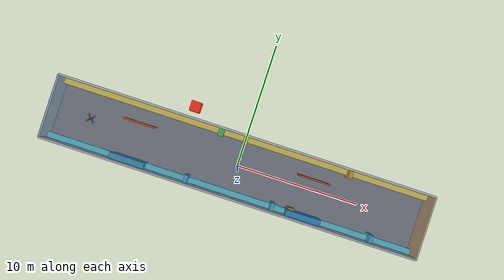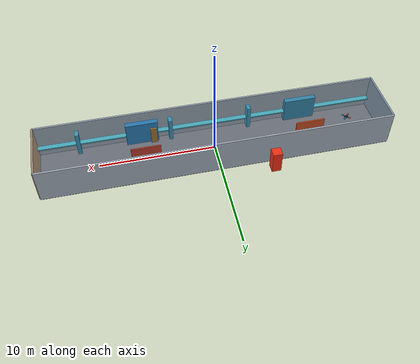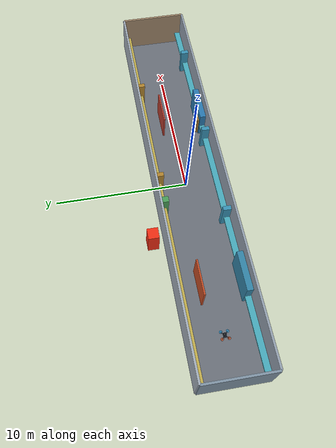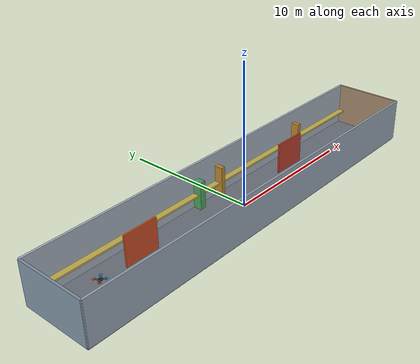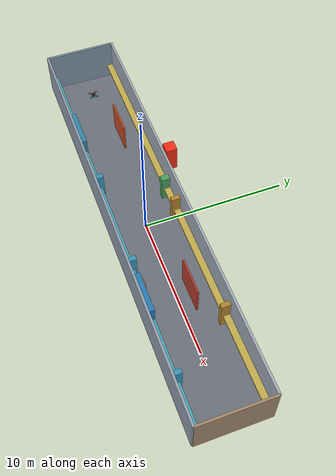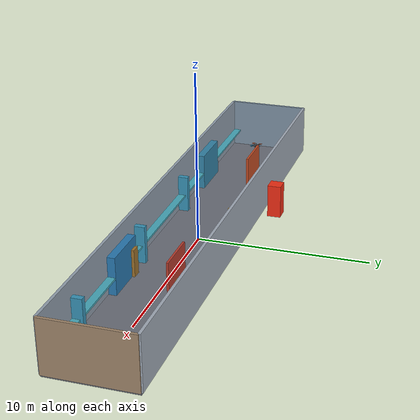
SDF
<?xml version="1.0"?>
<sdf version="1.10">
  <world name="xq_p12_dynamic_obstacle">
    <gravity>0 0 -9.80665</gravity>
    <physics name="xq_p12_400hz_physics" type="ode">
      <max_step_size>0.0025</max_step_size>
      <real_time_factor>1.0</real_time_factor>
      <real_time_update_rate>400</real_time_update_rate>
    </physics>
    <plugin filename="gz-sim-physics-system" name="gz::sim::systems::Physics"/>
    <plugin filename="gz-sim-user-commands-system" name="gz::sim::systems::UserCommands"/>
    <plugin filename="gz-sim-scene-broadcaster-system" name="gz::sim::systems::SceneBroadcaster"/>
    <plugin filename="gz-sim-sensors-system" name="gz::sim::systems::Sensors"><render_engine>ogre2</render_engine></plugin>
    <plugin filename="gz-sim-imu-system" name="gz::sim::systems::Imu"/>
    <scene><ambient>0.70 0.72 0.76</ambient><background>0.16 0.18 0.22</background></scene>
    <light name="xq_p12_sun" type="directional"><pose>0 0 8 0 0 0</pose><diffuse>0.9 0.9 0.86 1</diffuse><direction>-0.3 0.2 -1</direction></light>

    <!-- Dedicated P12 world: roof removed, every corridor wall retained. -->
    <model name="xq_p12_corridor_shell">
      <static>true</static>
      <link name="shell_link">
        <collision name="floor_c"><pose>0 0 -0.06 0 0 0</pose><geometry><box><size>30 5 0.12</size></box></geometry></collision>
        <visual name="floor_v"><pose>0 0 -0.06 0 0 0</pose><geometry><box><size>30 5 0.12</size></box></geometry><material><diffuse>0.42 0.44 0.48 1</diffuse></material></visual>
        <collision name="wall_n_c"><pose>0 2.5 1.55 0 0 0</pose><geometry><box><size>30 0.16 3.10</size></box></geometry></collision>
        <visual name="wall_n_v"><pose>0 2.5 1.55 0 0 0</pose><geometry><box><size>30 0.16 3.10</size></box></geometry><material><diffuse>0.64 0.68 0.73 1</diffuse></material></visual>
        <collision name="wall_s_c"><pose>0 -2.5 1.55 0 0 0</pose><geometry><box><size>30 0.16 3.10</size></box></geometry></collision>
        <visual name="wall_s_v"><pose>0 -2.5 1.55 0 0 0</pose><geometry><box><size>30 0.16 3.10</size></box></geometry><material><diffuse>0.58 0.63 0.69 1</diffuse></material></visual>
        <collision name="end_w_c"><pose>-15 0 1.55 0 0 0</pose><geometry><box><size>0.16 5 3.10</size></box></geometry></collision>
        <visual name="end_w_v"><pose>-15 0 1.55 0 0 0</pose><geometry><box><size>0.16 5 3.10</size></box></geometry><material><diffuse>0.50 0.58 0.65 1</diffuse></material></visual>
        <collision name="end_e_c"><pose>15 0 1.55 0 0 0</pose><geometry><box><size>0.16 5 3.10</size></box></geometry></collision>
        <visual name="end_e_v"><pose>15 0 1.55 0 0 0</pose><geometry><box><size>0.16 5 3.10</size></box></geometry><material><diffuse>0.63 0.53 0.42 1</diffuse></material></visual>

        <!-- P11 observability geometry is carried forward unchanged. -->
        <collision name="integrity_panel_c"><pose>-8.25 0.86 1.20 0 0 0</pose><geometry><box><size>2.50 0.12 2.20</size></box></geometry></collision>
        <visual name="integrity_panel_v"><pose>-8.25 0.86 1.20 0 0 0</pose><geometry><box><size>2.50 0.12 2.20</size></box></geometry><material><diffuse>0.78 0.30 0.14 1</diffuse></material></visual>
        <collision name="south_fins_c"><pose>-8.25 -2.18 1.10 0 0 0</pose><geometry><box><size>2.80 0.45 2.20</size></box></geometry></collision>
        <visual name="south_fins_v"><pose>-8.25 -2.18 1.10 0 0 0</pose><geometry><box><size>2.80 0.45 2.20</size></box></geometry><material><diffuse>0.20 0.52 0.66 1</diffuse></material></visual>
        <collision name="pier_01_c"><pose>-2.0 2.12 1.0 0 0 0</pose><geometry><box><size>0.45 0.60 2.0</size></box></geometry></collision>
        <visual name="pier_01_v"><pose>-2.0 2.12 1.0 0 0 0</pose><geometry><box><size>0.45 0.60 2.0</size></box></geometry><material><diffuse>0.29 0.62 0.35 1</diffuse></material></visual>
        <collision name="pier_02_c"><pose>5.0 -2.12 0.8 0 0 0</pose><geometry><box><size>0.55 0.65 1.6</size></box></geometry></collision>
        <visual name="pier_02_v"><pose>5.0 -2.12 0.8 0 0 0</pose><geometry><box><size>0.55 0.65 1.6</size></box></geometry><material><diffuse>0.62 0.45 0.18 1</diffuse></material></visual>
        <collision name="integrity_panel_02_c"><pose>6.0 0.86 1.20 0 0 0</pose><geometry><box><size>2.50 0.12 2.20</size></box></geometry></collision>
        <visual name="integrity_panel_02_v"><pose>6.0 0.86 1.20 0 0 0</pose><geometry><box><size>2.50 0.12 2.20</size></box></geometry><material><diffuse>0.72 0.24 0.18 1</diffuse></material></visual>
        <collision name="south_fins_02_c"><pose>6.0 -2.18 1.10 0 0 0</pose><geometry><box><size>2.80 0.45 2.20</size></box></geometry></collision>
        <visual name="south_fins_02_v"><pose>6.0 -2.18 1.10 0 0 0</pose><geometry><box><size>2.80 0.45 2.20</size></box></geometry><material><diffuse>0.16 0.48 0.70 1</diffuse></material></visual>
        <collision name="south_rib_01_c"><pose>-3.5 -2.12 1.10 0 0 0</pose><geometry><box><size>0.32 0.60 2.20</size></box></geometry></collision>
        <visual name="south_rib_01_v"><pose>-3.5 -2.12 1.10 0 0 0</pose><geometry><box><size>0.32 0.60 2.20</size></box></geometry><material><diffuse>0.22 0.58 0.72 1</diffuse></material></visual>
        <collision name="north_rib_02_c"><pose>0.0 2.12 1.10 0 0 0</pose><geometry><box><size>0.32 0.60 2.20</size></box></geometry></collision>
        <visual name="north_rib_02_v"><pose>0.0 2.12 1.10 0 0 0</pose><geometry><box><size>0.32 0.60 2.20</size></box></geometry><material><diffuse>0.70 0.52 0.18 1</diffuse></material></visual>
        <collision name="south_rib_03_c"><pose>3.5 -2.12 1.10 0 0 0</pose><geometry><box><size>0.32 0.60 2.20</size></box></geometry></collision>
        <visual name="south_rib_03_v"><pose>3.5 -2.12 1.10 0 0 0</pose><geometry><box><size>0.32 0.60 2.20</size></box></geometry><material><diffuse>0.22 0.58 0.72 1</diffuse></material></visual>
        <collision name="north_rib_04_c"><pose>8.5 2.12 1.10 0 0 0</pose><geometry><box><size>0.32 0.60 2.20</size></box></geometry></collision>
        <visual name="north_rib_04_v"><pose>8.5 2.12 1.10 0 0 0</pose><geometry><box><size>0.32 0.60 2.20</size></box></geometry><material><diffuse>0.70 0.52 0.18 1</diffuse></material></visual>
        <collision name="south_rib_05_c"><pose>11.5 -2.12 1.10 0 0 0</pose><geometry><box><size>0.32 0.60 2.20</size></box></geometry></collision>
        <visual name="south_rib_05_v"><pose>11.5 -2.12 1.10 0 0 0</pose><geometry><box><size>0.32 0.60 2.20</size></box></geometry><material><diffuse>0.22 0.58 0.72 1</diffuse></material></visual>
        <collision name="north_observation_ledge_c"><pose>0 2.20 0.99 0 0 0</pose><geometry><box><size>30 0.45 0.12</size></box></geometry></collision>
        <visual name="north_observation_ledge_v"><pose>0 2.20 0.99 0 0 0</pose><geometry><box><size>30 0.45 0.12</size></box></geometry><material><diffuse>0.76 0.68 0.30 1</diffuse></material></visual>
        <collision name="south_observation_ledge_c"><pose>0 -2.20 0.99 0 0 0</pose><geometry><box><size>30 0.45 0.12</size></box></geometry></collision>
        <visual name="south_observation_ledge_v"><pose>0 -2.20 0.99 0 0 0</pose><geometry><box><size>30 0.45 0.12</size></box></geometry><material><diffuse>0.28 0.67 0.74 1</diffuse></material></visual>
      </link>
    </model>

    <model name="xq_p12_moving_obstacle">
      <static>false</static>
      <pose>-4.5 3.4 1.0 0 0 0</pose>
      <link name="body">
        <gravity>false</gravity>
        <inertial><mass>20</mass><inertia><ixx>8</ixx><iyy>8</iyy><izz>4</izz></inertia></inertial>
        <collision name="body_c"><geometry><box><size>0.8 0.8 2.0</size></box></geometry></collision>
        <visual name="body_v"><geometry><box><size>0.8 0.8 2.0</size></box></geometry><material><diffuse>0.95 0.18 0.08 1</diffuse><emissive>0.18 0.02 0.01 1</emissive></material></visual>
      </link>
      <plugin filename="libxq_p12_obstacle_motion_system.so" name="xq_gz_bridge::P12ObstacleMotionSystem">
        <x_m>-4.5</x_m>
        <park_y_m>3.4</park_y_m>
        <blocked_y_m>0.0</blocked_y_m>
        <z_m>1.0</z_m>
        <enter_start_s>18.0</enter_start_s>
        <enter_end_s>22.0</enter_end_s>
        <leave_start_s>36.0</leave_start_s>
        <leave_end_s>40.0</leave_end_s>
      </plugin>
    </model>
    <include><name>xq_agent_01</name><uri>model://xq_iris_mid360</uri><pose>-12 0 1.2 0 0 0</pose></include>
  </world>
</sdf>

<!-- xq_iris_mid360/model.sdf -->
<sdf version="1.10">
  <model name="xq_iris_mid360" canonical_link="xq_base_link">
    <static>false</static>
    <self_collide>false</self_collide>
    <allow_auto_disable>false</allow_auto_disable>

    <link name="xq_base_link">
      <gravity>false</gravity>
      <inertial>
        <mass>1.40</mass>
        <inertia>
          <ixx>0.030</ixx>
          <ixy>0.0</ixy>
          <ixz>0.0</ixz>
          <iyy>0.030</iyy>
          <iyz>0.0</iyz>
          <izz>0.055</izz>
        </inertia>
      </inertial>

      <collision name="xq_body_collision">
        <geometry>
          <box>
            <size>0.30 0.22 0.10</size>
          </box>
        </geometry>
      </collision>
      <visual name="xq_body_visual">
        <geometry>
          <box>
            <size>0.30 0.22 0.10</size>
          </box>
        </geometry>
        <material>
          <ambient>0.035 0.045 0.060 1</ambient>
          <diffuse>0.055 0.075 0.100 1</diffuse>
          <specular>0.35 0.35 0.35 1</specular>
        </material>
      </visual>

      <collision name="xq_arm_ne_sw_collision">
        <pose>0 0 0.015 0 0 0.78539816339</pose>
        <geometry>
          <box>
            <size>0.66 0.035 0.028</size>
          </box>
        </geometry>
      </collision>
      <visual name="xq_arm_ne_sw_visual">
        <pose>0 0 0.015 0 0 0.78539816339</pose>
        <geometry>
          <box>
            <size>0.66 0.035 0.028</size>
          </box>
        </geometry>
        <material>
          <ambient>0.12 0.13 0.15 1</ambient>
          <diffuse>0.18 0.20 0.23 1</diffuse>
        </material>
      </visual>

      <collision name="xq_arm_nw_se_collision">
        <pose>0 0 0.015 0 0 -0.78539816339</pose>
        <geometry>
          <box>
            <size>0.66 0.035 0.028</size>
          </box>
        </geometry>
      </collision>
      <visual name="xq_arm_nw_se_visual">
        <pose>0 0 0.015 0 0 -0.78539816339</pose>
        <geometry>
          <box>
            <size>0.66 0.035 0.028</size>
          </box>
        </geometry>
        <material>
          <ambient>0.12 0.13 0.15 1</ambient>
          <diffuse>0.18 0.20 0.23 1</diffuse>
        </material>
      </visual>

      <visual name="xq_rotor_front_left_visual">
        <pose>0.235 0.235 0.045 0 0 0</pose>
        <geometry>
          <cylinder>
            <radius>0.105</radius>
            <length>0.008</length>
          </cylinder>
        </geometry>
        <transparency>0.35</transparency>
        <material>
          <ambient>0.08 0.55 0.78 1</ambient>
          <diffuse>0.08 0.55 0.78 1</diffuse>
        </material>
      </visual>
      <visual name="xq_rotor_front_right_visual">
        <pose>0.235 -0.235 0.045 0 0 0</pose>
        <geometry>
          <cylinder>
            <radius>0.105</radius>
            <length>0.008</length>
          </cylinder>
        </geometry>
        <transparency>0.35</transparency>
        <material>
          <ambient>0.08 0.55 0.78 1</ambient>
          <diffuse>0.08 0.55 0.78 1</diffuse>
        </material>
      </visual>
      <visual name="xq_rotor_rear_left_visual">
        <pose>-0.235 0.235 0.045 0 0 0</pose>
        <geometry>
          <cylinder>
            <radius>0.105</radius>
            <length>0.008</length>
          </cylinder>
        </geometry>
        <transparency>0.35</transparency>
        <material>
          <ambient>0.78 0.29 0.10 1</ambient>
          <diffuse>0.78 0.29 0.10 1</diffuse>
        </material>
      </visual>
      <visual name="xq_rotor_rear_right_visual">
        <pose>-0.235 -0.235 0.045 0 0 0</pose>
        <geometry>
          <cylinder>
            <radius>0.105</radius>
            <length>0.008</length>
          </cylinder>
        </geometry>
        <transparency>0.35</transparency>
        <material>
          <ambient>0.78 0.29 0.10 1</ambient>
          <diffuse>0.78 0.29 0.10 1</diffuse>
        </material>
      </visual>
    </link>

    <link name="xq_mid360_link">
      <pose relative_to="xq_base_link">0.04 0 0.135 0 0 0</pose>
      <gravity>false</gravity>
      <inertial>
        <mass>0.265</mass>
        <inertia>
          <ixx>0.00045</ixx>
          <ixy>0.0</ixy>
          <ixz>0.0</ixz>
          <iyy>0.00045</iyy>
          <iyz>0.0</iyz>
          <izz>0.00055</izz>
        </inertia>
      </inertial>
      <collision name="xq_mid360_collision">
        <geometry>
          <cylinder>
            <radius>0.040</radius>
            <length>0.065</length>
          </cylinder>
        </geometry>
      </collision>
      <visual name="xq_mid360_visual">
        <geometry>
          <cylinder>
            <radius>0.040</radius>
            <length>0.065</length>
          </cylinder>
        </geometry>
        <material>
          <ambient>0.02 0.02 0.025 1</ambient>
          <diffuse>0.035 0.035 0.045 1</diffuse>
          <specular>0.55 0.55 0.55 1</specular>
        </material>
      </visual>

      <!-- MID-360-like aggregate raster: 720 x 32 x 10 Hz ~= 230 kpoints/s. -->
      <sensor name="xq_mid360_lidar" type="gpu_lidar">
        <!-- Gazebo publishes LaserScan here and PointCloudPacked on /points. -->
        <topic>/xq/lidar</topic>
        <always_on>true</always_on>
        <update_rate>10</update_rate>
        <visualize>false</visualize>
        <lidar>
          <scan>
            <horizontal>
              <samples>720</samples>
              <resolution>1</resolution>
              <min_angle>-3.14159265359</min_angle>
              <max_angle>3.14159265359</max_angle>
            </horizontal>
            <vertical>
              <samples>32</samples>
              <resolution>1</resolution>
              <min_angle>-0.12217304764</min_angle>
              <max_angle>0.90757121104</max_angle>
            </vertical>
          </scan>
          <range>
            <min>0.10</min>
            <max>40.0</max>
            <resolution>0.02</resolution>
          </range>
          <noise>
            <type>gaussian</type>
            <mean>0.0</mean>
            <stddev>0.015</stddev>
          </noise>
        </lidar>
      </sensor>
    </link>

    <joint name="xq_mid360_joint" type="fixed">
      <parent>xq_base_link</parent>
      <child>xq_mid360_link</child>
    </joint>

    <link name="xq_imu_link">
      <pose relative_to="xq_base_link">0 0 0.015 0 0 0</pose>
      <gravity>false</gravity>
      <inertial>
        <mass>0.020</mass>
        <inertia>
          <ixx>0.00001</ixx>
          <ixy>0.0</ixy>
          <ixz>0.0</ixz>
          <iyy>0.00001</iyy>
          <iyz>0.0</iyz>
          <izz>0.00001</izz>
        </inertia>
      </inertial>
      <sensor name="xq_imu_sensor" type="imu">
        <topic>/xq/imu</topic>
        <always_on>true</always_on>
        <update_rate>200</update_rate>
        <imu>
          <angular_velocity>
            <x><noise type="gaussian"><mean>0</mean><stddev>0.00020</stddev></noise></x>
            <y><noise type="gaussian"><mean>0</mean><stddev>0.00020</stddev></noise></y>
            <z><noise type="gaussian"><mean>0</mean><stddev>0.00020</stddev></noise></z>
          </angular_velocity>
          <linear_acceleration>
            <x><noise type="gaussian"><mean>0</mean><stddev>0.0020</stddev></noise></x>
            <y><noise type="gaussian"><mean>0</mean><stddev>0.0020</stddev></noise></y>
            <z><noise type="gaussian"><mean>0</mean><stddev>0.0020</stddev></noise></z>
          </linear_acceleration>
        </imu>
      </sensor>
    </link>

    <joint name="xq_imu_joint" type="fixed">
      <parent>xq_base_link</parent>
      <child>xq_imu_link</child>
    </joint>

    <plugin filename="gz-sim-velocity-control-system"
            name="gz::sim::systems::VelocityControl">
      <initial_linear>0 0 0</initial_linear>
      <initial_angular>0 0 0</initial_angular>
    </plugin>

    <plugin filename="gz-sim-odometry-publisher-system"
            name="gz::sim::systems::OdometryPublisher">
      <dimensions>3</dimensions>
      <odom_publish_frequency>50</odom_publish_frequency>
      <odom_frame>xq_world</odom_frame>
      <robot_base_frame>xq_base_link</robot_base_frame>
    </plugin>
  </model>
</sdf>
